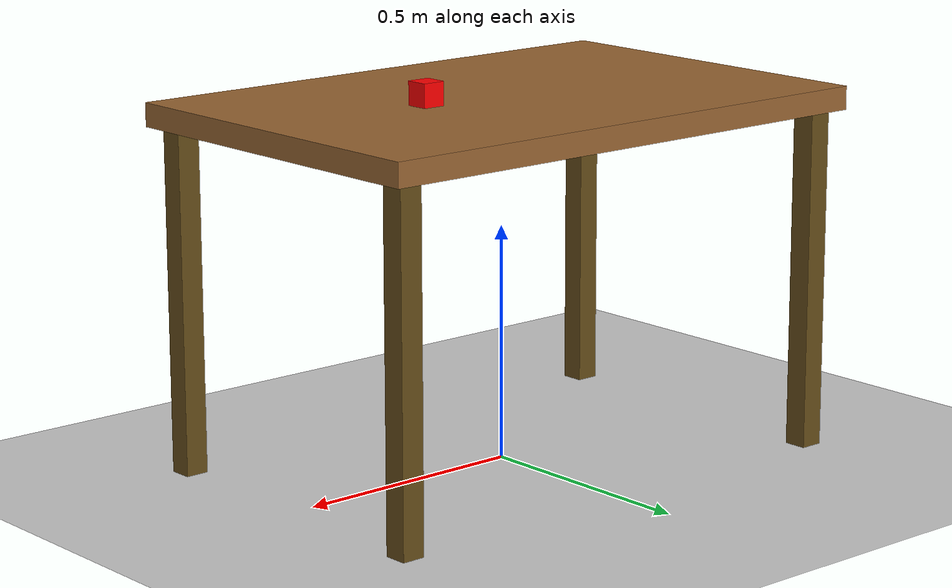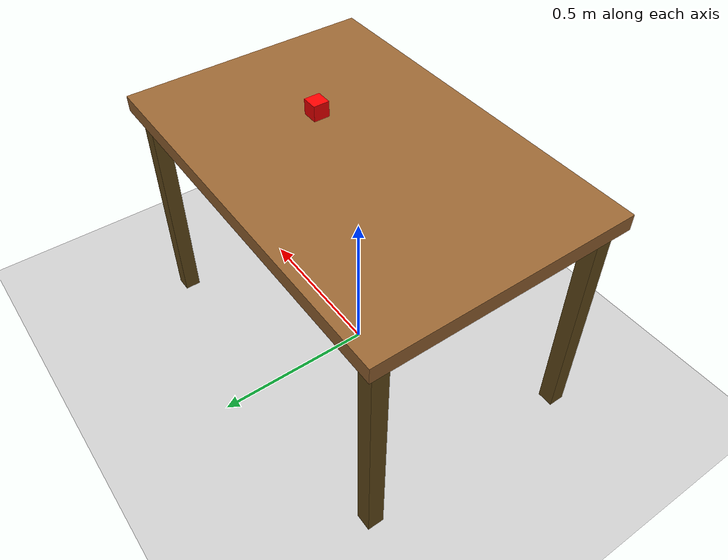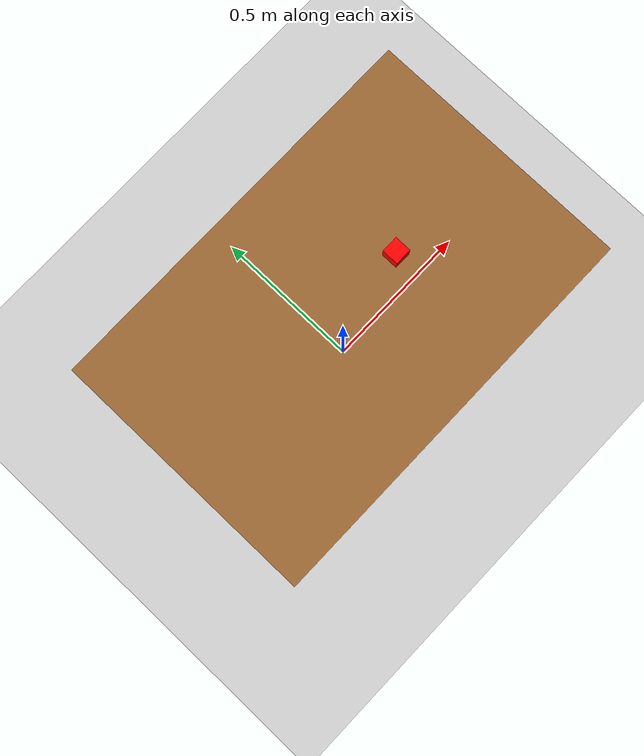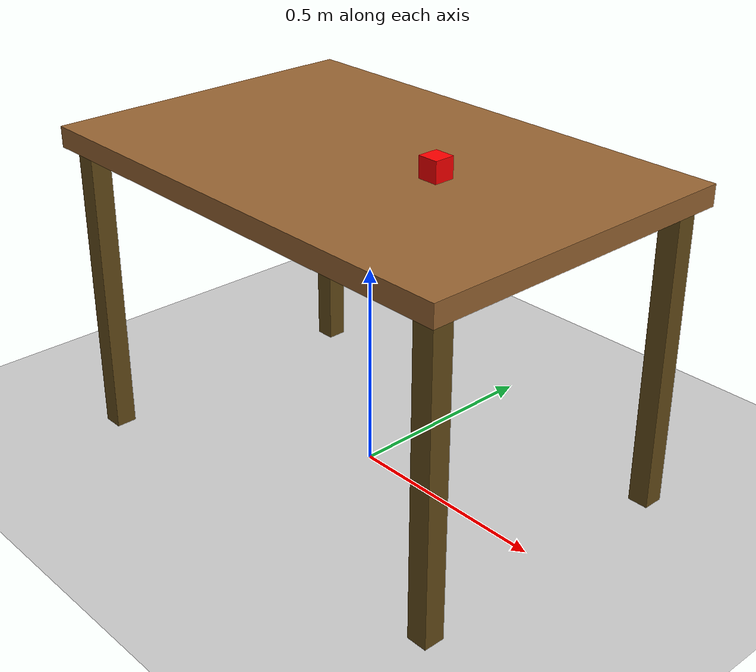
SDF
<?xml version="1.0" ?>
<sdf version="1.6">
  <world name="trucon_world">

    <include>
      <uri>model://ground_plane</uri>
    </include>

    <include>
      <uri>model://sun</uri>
    </include>

    <physics type="ode">
      <real_time_update_rate>1000.0</real_time_update_rate>
      <max_step_size>0.001</max_step_size>
    </physics>

    <!-- Desk Table -->
    <model name="desk">
      <static>true</static>
      <pose>0 0 0 0 0 0</pose>

      <!-- Table Top -->
      <link name="table_top">
        <pose>0 0 0.75 0 0 0</pose>
        <visual name="visual">
          <geometry>
            <box><size>1.2 0.8 0.05</size></box>
          </geometry>
          <material>
            <ambient>0.6 0.4 0.2 1</ambient>
            <diffuse>0.6 0.4 0.2 1</diffuse>
          </material>
        </visual>
        <collision name="collision">
          <geometry>
            <box><size>1.2 0.8 0.05</size></box>
          </geometry>
        </collision>
      </link>

      <!-- Leg 1 -->
      <link name="leg1">
        <pose>0.55 0.35 0.375 0 0 0</pose>
        <visual name="visual">
          <geometry>
            <box><size>0.05 0.05 0.75</size></box>
          </geometry>
          <material>
            <ambient>0.4 0.3 0.1 1</ambient>
            <diffuse>0.4 0.3 0.1 1</diffuse>
          </material>
        </visual>
        <collision name="collision">
          <geometry>
            <box><size>0.05 0.05 0.75</size></box>
          </geometry>
        </collision>
      </link>

      <!-- Leg 2 -->
      <link name="leg2">
        <pose>-0.55 0.35 0.375 0 0 0</pose>
        <visual name="visual">
          <geometry>
            <box><size>0.05 0.05 0.75</size></box>
          </geometry>
          <material>
            <ambient>0.4 0.3 0.1 1</ambient>
            <diffuse>0.4 0.3 0.1 1</diffuse>
          </material>
        </visual>
        <collision name="collision">
          <geometry>
            <box><size>0.05 0.05 0.75</size></box>
          </geometry>
        </collision>
      </link>

      <!-- Leg 3 -->
      <link name="leg3">
        <pose>0.55 -0.35 0.375 0 0 0</pose>
        <visual name="visual">
          <geometry>
            <box><size>0.05 0.05 0.75</size></box>
          </geometry>
          <material>
            <ambient>0.4 0.3 0.1 1</ambient>
            <diffuse>0.4 0.3 0.1 1</diffuse>
          </material>
        </visual>
        <collision name="collision">
          <geometry>
            <box><size>0.05 0.05 0.75</size></box>
          </geometry>
        </collision>
      </link>

      <!-- Leg 4 -->
      <link name="leg4">
        <pose>-0.55 -0.35 0.375 0 0 0</pose>
        <visual name="visual">
          <geometry>
            <box><size>0.05 0.05 0.75</size></box>
          </geometry>
          <material>
            <ambient>0.4 0.3 0.1 1</ambient>
            <diffuse>0.4 0.3 0.1 1</diffuse>
          </material>
        </visual>
        <collision name="collision">
          <geometry>
            <box><size>0.05 0.05 0.75</size></box>
          </geometry>
        </collision>
      </link>

    </model>

    <!-- Small object for gripper interaction -->
    <model name="target_box">
      <static>false</static>
      <pose>0.2 0 0.8 0 0 0</pose>
      <link name="box_link">
        <inertial>
          <mass>0.1</mass>
          <inertia>
            <ixx>0.0001</ixx><iyy>0.0001</iyy><izz>0.0001</izz>
            <ixy>0</ixy><ixz>0</ixz><iyz>0</iyz>
          </inertia>
        </inertial>
        <visual name="visual">
          <geometry>
            <box><size>0.05 0.05 0.05</size></box>
          </geometry>
          <material>
            <ambient>1 0 0 1</ambient>
            <diffuse>1 0 0 1</diffuse>
          </material>
        </visual>
        <collision name="collision">
          <geometry>
            <box><size>0.05 0.05 0.05</size></box>
          </geometry>
        </collision>
      </link>
    </model>

  </world>
</sdf>
